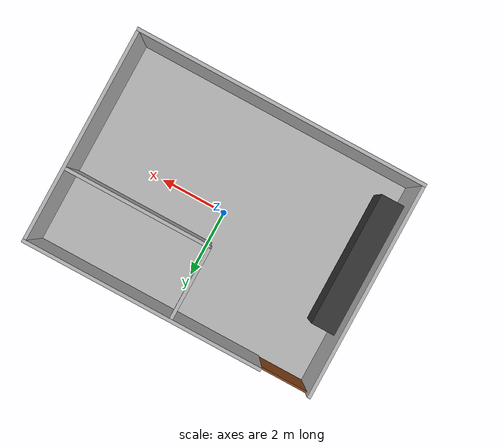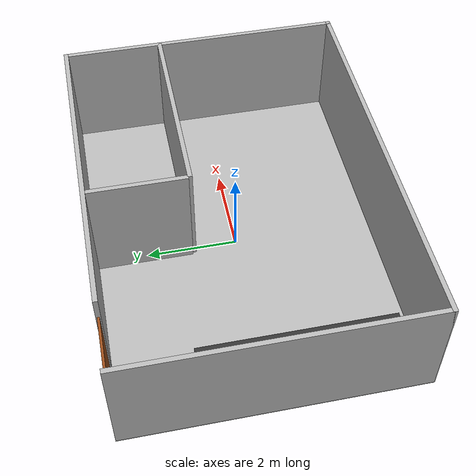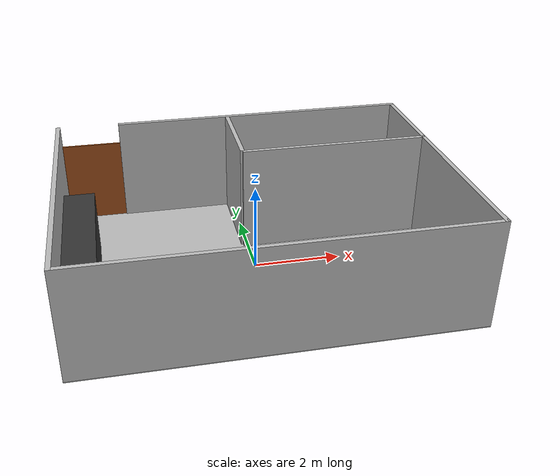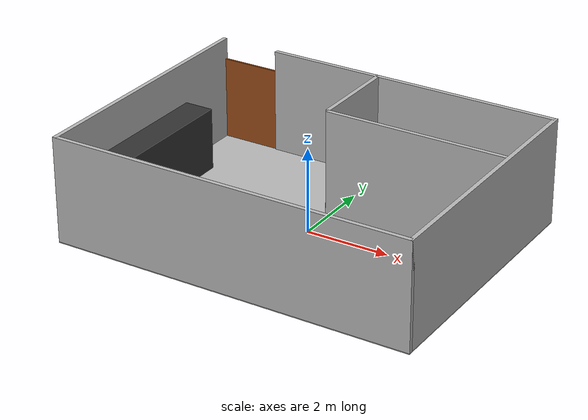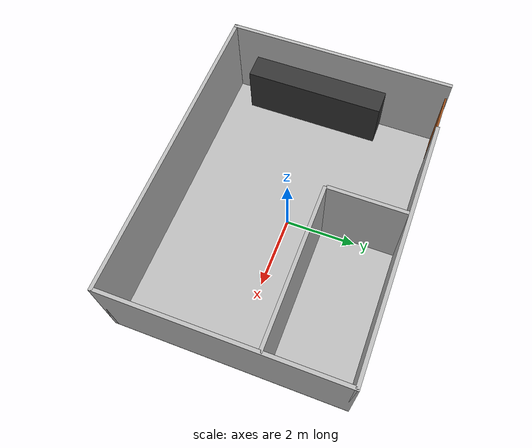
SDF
<?xml version="1.0" ?>
<sdf version="1.6">
  <world name="office_world">

    <include>
      <uri>model://sun</uri>
    </include>

    <!-- Suelo: 8.6444 m x 6.4203 m -->
    <model name="office_floor">
      <static>true</static>
      <pose>0 0 -0.01 0 0 0</pose>
      <link name="link">
        <collision name="collision">
          <geometry>
            <box>
              <size>8.6444 6.4203 0.02</size>
            </box>
          </geometry>
        </collision>
        <visual name="visual">
          <geometry>
            <box>
              <size>8.6444 6.4203 0.02</size>
            </box>
          </geometry>
        </visual>
      </link>
    </model>

    <!-- Pared exterior superior (Acortada: hueco de 1.40m en el extremo izquierdo para la puerta) -->
    <!-- Hueco de puerta va de x = -4.2222 a x = -2.8222 (justo tras el canto interior de wall_left) -->
    <model name="wall_top">
      <static>true</static>
      <pose>0.75 3.1602 1.25 0 0 0</pose>
      <link name="link">
        <collision name="collision">
          <geometry><box><size>7.1444 0.10 2.5</size></box></geometry>
        </collision>
        <visual name="visual">
          <geometry><box><size>7.1444 0.10 2.5</size></box></geometry>
        </visual>
      </link>
    </model>

    <!-- Pared exterior inferior -->
    <model name="wall_bottom">
      <static>true</static>
      <pose>0 -3.1602 1.25 0 0 0</pose>
      <link name="link">
        <collision name="collision">
          <geometry><box><size>8.6444 0.10 2.5</size></box></geometry>
        </collision>
        <visual name="visual">
          <geometry><box><size>8.6444 0.10 2.5</size></box></geometry>
        </visual>
      </link>
    </model>

    <!-- Pared exterior izquierda (COMPLETA, sin huecos) -->
    <model name="wall_left">
      <static>true</static>
      <pose>-4.2722 0 1.25 0 0 0</pose>
      <link name="link">
        <collision name="collision">
          <geometry><box><size>0.10 6.4203 2.5</size></box></geometry>
        </collision>
        <visual name="visual">
          <geometry><box><size>0.10 6.4203 2.5</size></box></geometry>
        </visual>
      </link>
    </model>

    <!-- Pared exterior derecha -->
    <model name="wall_right">
      <static>true</static>
      <pose>4.2722 0 1.25 0 0 0</pose>
      <link name="link">
        <collision name="collision">
          <geometry><box><size>0.10 6.4203 2.5</size></box></geometry>
        </collision>
        <visual name="visual">
          <geometry><box><size>0.10 6.4203 2.5</size></box></geometry>
        </visual>
      </link>
    </model>

    <!-- Puerta doble en la PARED SUPERIOR, esquina izquierda (hueco de 1.40m) -->
    <!-- Centro del hueco: x = (-4.2222 + -2.8222) / 2 = -3.5222 -->
    <model name="door_double">
      <static>true</static>
      <pose>-3.5222 3.1602 1.00 0 0 0</pose>
      <link name="link">
        <collision name="collision">
          <geometry><box><size>1.40 0.05 2.0</size></box></geometry>
        </collision>
        <visual name="visual">
          <geometry><box><size>1.40 0.05 2.0</size></box></geometry>
          <material>
            <ambient>0.6 0.3 0.1 1</ambient>
            <diffuse>0.6 0.3 0.1 1</diffuse>
          </material>
        </visual>
      </link>
    </model>

    <!-- Estanterías contra la PARED IZQUIERDA (~4m de largo, corriendo en el eje Y) -->
    <!-- Cara trasera enrasada con el canto interior de wall_left (x = -4.2222) -->
    <!-- Profundidad 0.70m => centro en x = -4.2222 + 0.35 = -3.8722 -->
    <model name="shelves_left">
      <static>true</static>
      <pose>-3.8722 -0.5 0.75 0 0 0</pose>
      <link name="link">
        <collision name="collision">
          <geometry><box><size>0.70 4.00 1.50</size></box></geometry>
        </collision>
        <visual name="visual">
          <geometry><box><size>0.70 4.00 1.50</size></box></geometry>
          <material>
            <ambient>0.2 0.2 0.2 1</ambient>
            <diffuse>0.2 0.2 0.2 1</diffuse>
          </material>
        </visual>
      </link>
    </model>

    <!-- Pared interior vertical aproximada (Original) -->
    <model name="wall_internal_vertical">
      <static>true</static>
      <pose>-0.1049 2.0982 1.25 0 0 0</pose>
      <link name="link">
        <collision name="collision">
          <geometry><box><size>0.10 2.2031 2.5</size></box></geometry>
        </collision>
        <visual name="visual">
          <geometry><box><size>0.10 2.2031 2.5</size></box></geometry>
        </visual>
      </link>
    </model>

    <!-- Pared interior horizontal aproximada (Original) -->
    <model name="wall_internal_horizontal">
      <static>true</static>
      <pose>2.0982 0.9652 1.25 0 0 0</pose>
      <link name="link">
        <collision name="collision">
          <geometry><box><size>4.4062 0.10 2.5</size></box></geometry>
        </collision>
        <visual name="visual">
          <geometry><box><size>4.4062 0.10 2.5</size></box></geometry>
        </visual>
      </link>
    </model>

  </world>
</sdf>
